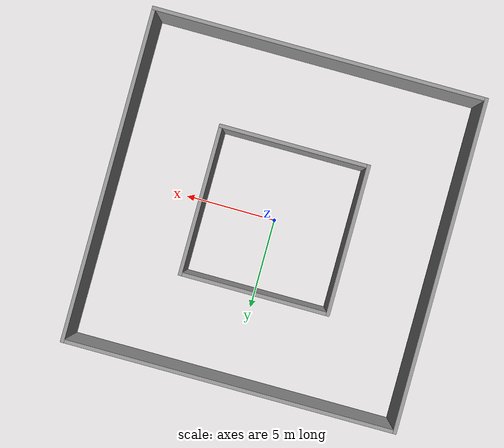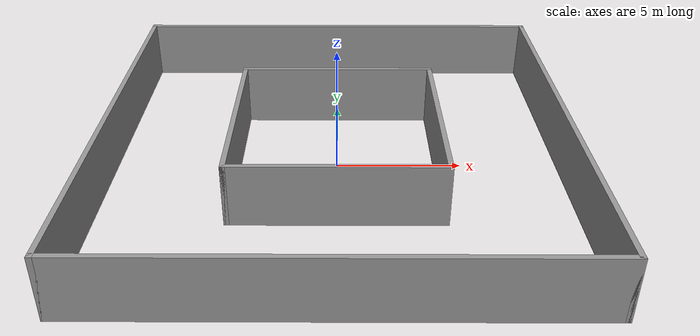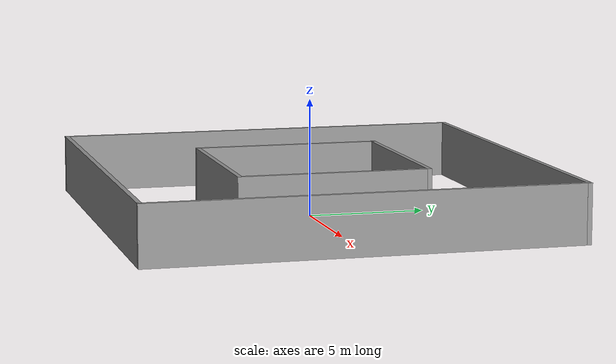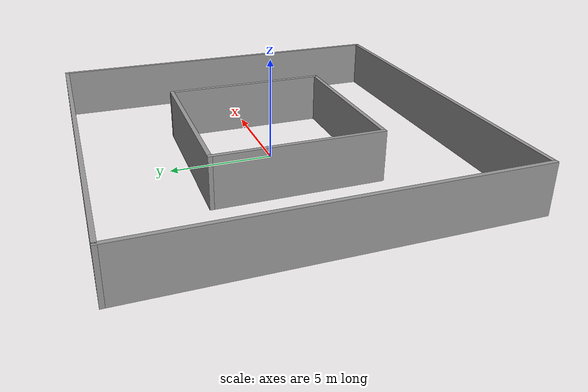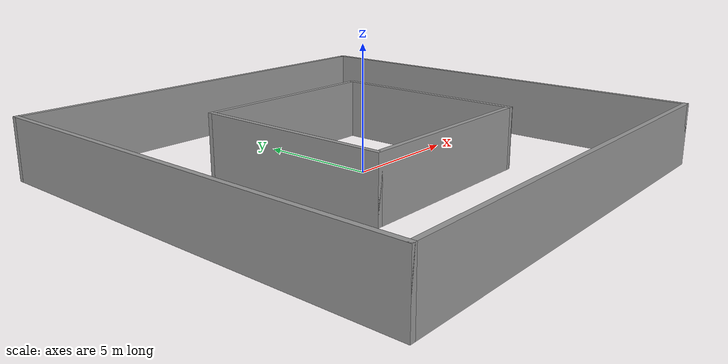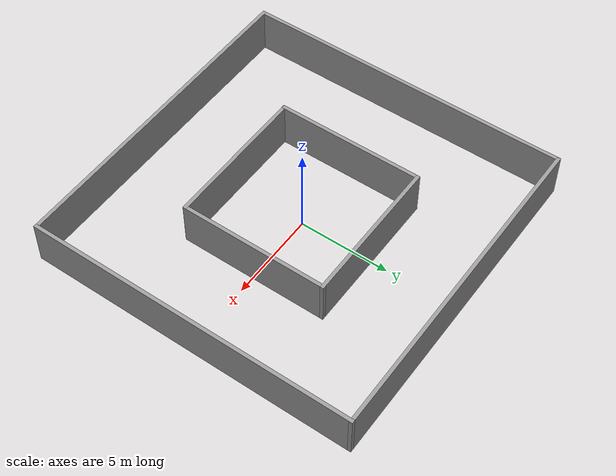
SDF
<?xml version='1.0'?>
<sdf version='1.4'>
  <model name='TurtleMaze'>
    <link name='Wall_1'>
      <collision name='Wall_1_Collision'>
        <geometry>
          <box>
            <size>18.2 0.2 2.5</size>
          </box>
        </geometry>
        <pose>0 0 1.25 0 -0 0</pose>
      </collision>
      <visual name='Wall_1_Visual'>
        <pose>0 0 1.25 0 -0 0</pose>
        <geometry>
          <box>
            <size>18.2 0.2 2.5</size>
          </box>
        </geometry>
        <material>
          <script>
            <uri>file://media/materials/scripts/gazebo.material</uri>
            <name>Gazebo/Grey</name>
          </script>
        </material>
      </visual>
      <velocity_decay>
        <linear>0</linear>
        <angular>0</angular>
      </velocity_decay>
      <pose>-9 0 0 0 0 -1.5708</pose>
    </link>
    <link name='Wall_2'>
      <collision name='Wall_2_Collision'>
        <geometry>
          <box>
            <size>18.2 0.2 2.5</size>
          </box>
        </geometry>
        <pose>0 0 1.25 0 -0 0</pose>
      </collision>
      <visual name='Wall_2_Visual'>
        <pose>0 0 1.25 0 -0 0</pose>
        <geometry>
          <box>
            <size>18.2 0.2 2.5</size>
          </box>
        </geometry>
        <material>
          <script>
            <uri>file://media/materials/scripts/gazebo.material</uri>
            <name>Gazebo/Grey</name>
          </script>
        </material>
      </visual>
      <velocity_decay>
        <linear>0</linear>
        <angular>0</angular>
      </velocity_decay>
      <pose>-0 -9 0 0 -0 0</pose>
    </link>
    <link name='Wall_3'>
      <collision name='Wall_3_Collision'>
        <geometry>
          <box>
            <size>18.2 0.2 2.5</size>
          </box>
        </geometry>
        <pose>0 0 1.25 0 -0 0</pose>
      </collision>
      <visual name='Wall_3_Visual'>
        <pose>0 0 1.25 0 -0 0</pose>
        <geometry>
          <box>
            <size>18.2 0.2 2.5</size>
          </box>
        </geometry>
        <material>
          <script>
            <uri>file://media/materials/scripts/gazebo.material</uri>
            <name>Gazebo/Grey</name>
          </script>
        </material>
      </visual>
      <velocity_decay>
        <linear>0</linear>
        <angular>0</angular>
      </velocity_decay>
      <pose>9 0 0 0 -0 1.5708</pose>
    </link>
    <link name='Wall_4'>
      <collision name='Wall_4_Collision'>
        <geometry>
          <box>
            <size>18.2 0.2 2.5</size>
          </box>
        </geometry>
        <pose>0 0 1.25 0 -0 0</pose>
      </collision>
      <visual name='Wall_4_Visual'>
        <pose>0 0 1.25 0 -0 0</pose>
        <geometry>
          <box>
            <size>18.2 0.2 2.5</size>
          </box>
        </geometry>
        <material>
          <script>
            <uri>file://media/materials/scripts/gazebo.material</uri>
            <name>Gazebo/Grey</name>
          </script>
        </material>
      </visual>
      <velocity_decay>
        <linear>0</linear>
        <angular>0</angular>
      </velocity_decay>
      <pose>-0 9 0 0 -0 3.14159</pose>
    </link>
    <link name='Wall_6'>
      <collision name='Wall_6_Collision'>
        <geometry>
          <box>
            <size>8.2 0.2 2.5</size>
          </box>
        </geometry>
        <pose>0 0 1.25 0 -0 0</pose>
      </collision>
      <visual name='Wall_6_Visual'>
        <pose>0 0 1.25 0 -0 0</pose>
        <geometry>
          <box>
            <size>8.2 0.2 2.5</size>
          </box>
        </geometry>
        <material>
          <script>
            <uri>file://media/materials/scripts/gazebo.material</uri>
            <name>Gazebo/Grey</name>
          </script>
        </material>
      </visual>
      <velocity_decay>
        <linear>0</linear>
        <angular>0</angular>
      </velocity_decay>
      <pose>-4 0 0 0 0 -1.5708</pose>
    </link>
    <link name='Wall_7'>
      <collision name='Wall_7_Collision'>
        <geometry>
          <box>
            <size>8.2 0.2 2.5</size>
          </box>
        </geometry>
        <pose>0 0 1.25 0 -0 0</pose>
      </collision>
      <visual name='Wall_7_Visual'>
        <pose>0 0 1.25 0 -0 0</pose>
        <geometry>
          <box>
            <size>8.2 0.2 2.5</size>
          </box>
        </geometry>
        <material>
          <script>
            <uri>file://media/materials/scripts/gazebo.material</uri>
            <name>Gazebo/Grey</name>
          </script>
        </material>
      </visual>
      <velocity_decay>
        <linear>0</linear>
        <angular>0</angular>
      </velocity_decay>
      <pose>0 -4 0 0 -0 0</pose>
    </link>
    <link name='Wall_8'>
      <collision name='Wall_8_Collision'>
        <geometry>
          <box>
            <size>8.2 0.2 2.5</size>
          </box>
        </geometry>
        <pose>0 0 1.25 0 -0 0</pose>
      </collision>
      <visual name='Wall_8_Visual'>
        <pose>0 0 1.25 0 -0 0</pose>
        <geometry>
          <box>
            <size>8.2 0.2 2.5</size>
          </box>
        </geometry>
        <material>
          <script>
            <uri>file://media/materials/scripts/gazebo.material</uri>
            <name>Gazebo/Grey</name>
          </script>
        </material>
      </visual>
      <velocity_decay>
        <linear>0</linear>
        <angular>0</angular>
      </velocity_decay>
      <pose>4 0 0 0 -0 1.5708</pose>
    </link>
    <link name='Wall_9'>
      <collision name='Wall_9_Collision'>
        <geometry>
          <box>
            <size>8.2 0.2 2.5</size>
          </box>
        </geometry>
        <pose>0 0 1.25 0 -0 0</pose>
      </collision>
      <visual name='Wall_9_Visual'>
        <pose>0 0 1.25 0 -0 0</pose>
        <geometry>
          <box>
            <size>8.2 0.2 2.5</size>
          </box>
        </geometry>
        <material>
          <script>
            <uri>file://media/materials/scripts/gazebo.material</uri>
            <name>Gazebo/Grey</name>
          </script>
        </material>
      </visual>
      <velocity_decay>
        <linear>0</linear>
        <angular>0</angular>
      </velocity_decay>
      <pose>-0 4 0 0 -0 3.14159</pose>
    </link>
    <static>1</static>
  </model>
</sdf>
